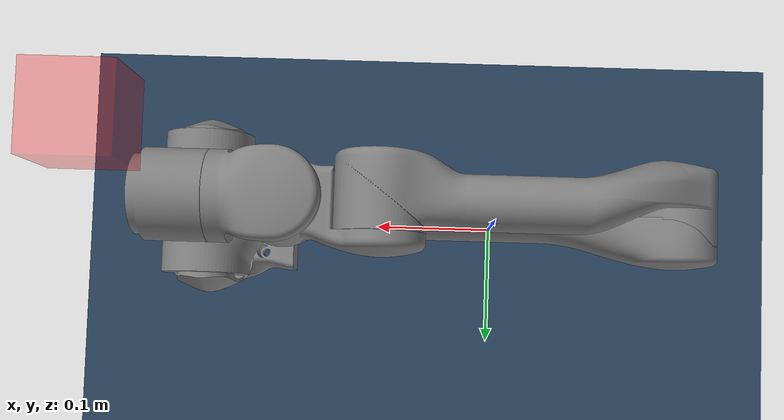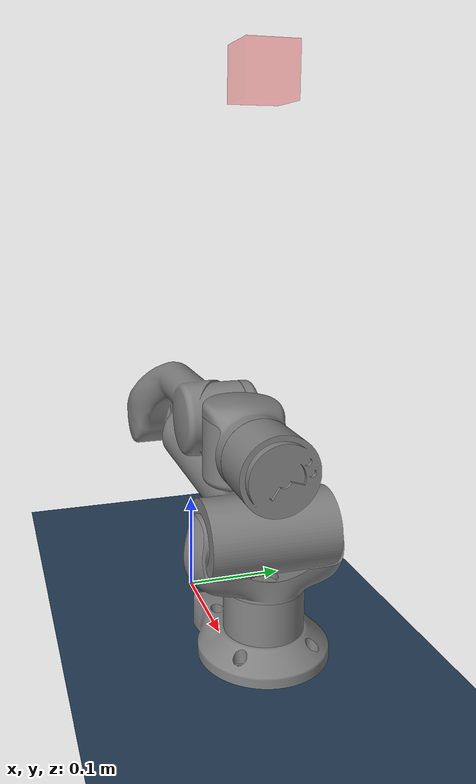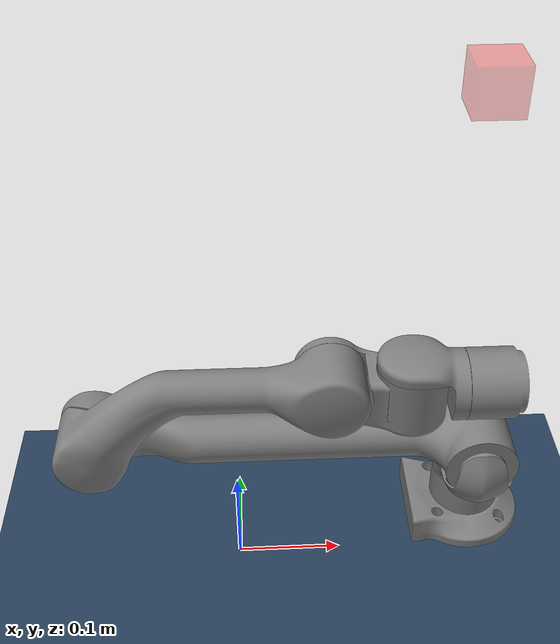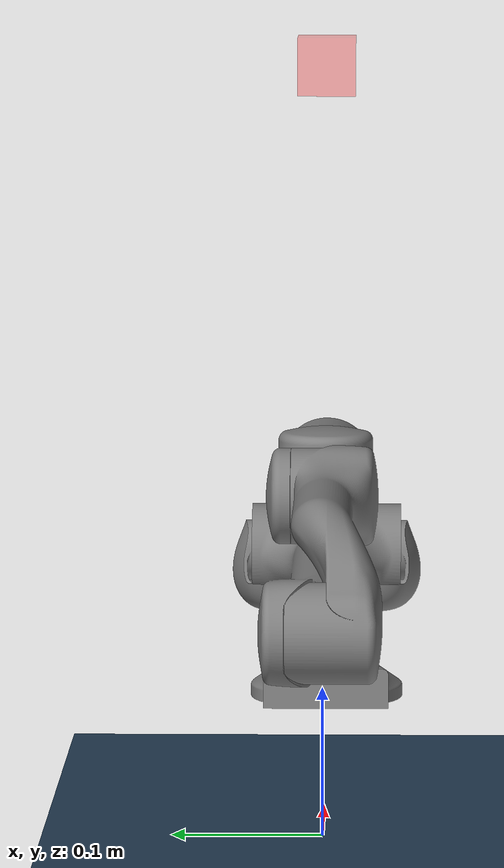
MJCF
<mujoco model="z1 scene">
  <include file="z1_floating.xml"/>

  <statistic center="0 0 0.1" extent="0.6"/>

  <visual>
    <headlight diffuse="0.6 0.6 0.6" ambient="0.3 0.3 0.3" specular="0 0 0"/>
    <rgba haze="0.15 0.25 0.35 1"/>
    <global azimuth="120" elevation="-20"/>
  </visual>

  <asset>
    <texture type="skybox" builtin="gradient" rgb1="0.3 0.5 0.7" rgb2="0 0 0" width="512" height="3072"/>
    <texture type="2d" name="groundplane" builtin="checker" mark="edge" rgb1="0.2 0.3 0.4" rgb2="0.1 0.2 0.3"
      markrgb="0.8 0.8 0.8" width="300" height="300"/>
    <material name="groundplane" texture="groundplane" texuniform="true" texrepeat="5 5" reflectance="0.2"/>
  </asset>

  <worldbody>
    <light pos="0 0 1.5" dir="0 0 -1" directional="true"/>
    <geom name="floor" size="0 0 0.05" type="plane" material="groundplane"/>
    <body name="reference" pos="0.2 0 0.5" quat="1.0 0 0 0" mocap="true">
      <geom name="box" type="box" size="0.02 0.02 0.02" rgba="1.0 0. 0. 0.3" contype="0" conaffinity="0"/>
    </body>
    <body name="limited_reference" pos="0.2 0 0.5" quat="1.0 0 0 0" mocap="true">
      <geom name="box_1" type="box" size="0.02 0.02 0.02" rgba="0.0 1. 0. 0.3" contype="0" conaffinity="0"/>
    </body>
  </worldbody>
</mujoco>

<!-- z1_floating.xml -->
<mujoco model="z1">
  <compiler angle="radian" meshdir="assets"/>

  <default>
    <default class="z1">
      <joint damping="1" frictionloss="1"/>
      <general biastype="affine" gainprm="1000" biasprm="0 -1000 -100" forcerange="-30 30"/>
      <default class="visual">
        <geom type="mesh" group="2" contype="0" conaffinity="0"/>
      </default>
      <default class="collision">
        <geom type="cylinder" group="3" mass="0" density="0"/>
      </default>
    </default>
  </default>

  <asset>
    <mesh file="z1_Link00.stl"/>
    <mesh file="z1_Link01.stl"/>
    <mesh file="z1_Link02.stl"/>
    <mesh file="z1_Link03.stl"/>
    <mesh file="z1_Link04.stl"/>
    <mesh file="z1_Link05.stl"/>
    <mesh file="z1_Link06.stl"/>
  </asset>

  <worldbody>
  <body name="base_link" childclass="z1" >
    <freejoint/>
      <body name="link00" pos="0.22 0 0.055" childclass="z1" >
        <inertial pos="-0.00334984 -0.00013615 0.0249584" quat="-0.00692194 0.682592 0.00133293 0.730766" mass="0.472475"
          diaginertia="0.000531375 0.000415207 0.000378658"/>
        <geom class="visual" mesh="z1_Link00"/>
        <body name="link01" pos="0 0 0.0585">
          <inertial pos="2.47e-06 -0.00025198 0.0231717" quat="0.708578 0.705633 0.000281462 -0.000355927" mass="0.673326"
            diaginertia="0.00128328 0.000839362 0.000719308"/>
          <joint name="joint1" axis="0 0 1" range="-2.61799 2.61799"/>
          <geom class="visual" mesh="z1_Link01" name="link01_collision"/>
          <body name="link02" pos="0 0 0.045">
            <inertial pos="-0.110126 0.00240029 0.00158266" quat="0.00748058 0.707092 -0.0114473 0.70699" mass="1.19132"
              diaginertia="0.0246612 0.0243113 0.00100468"/>
            <joint name="joint2" axis="0 1 0" range="0 2.96706"/>
            <geom class="visual" mesh="z1_Link02" name="link02_collision"/>
            <body name="link03" pos="-0.35 0 0">
              <inertial pos="0.106092 -0.00541815 0.0347638" quat="0.540557 0.443575 0.426319 0.573839" mass="0.839409"
                diaginertia="0.00954365 0.00938711 0.000558432"/>
              <joint name="joint3" axis="0 1 0" range="-2.87979 0"/>
              <geom class="visual" mesh="z1_Link03" name="link03_collision"/>
              <body name="link04" pos="0.218 0 0.057">
                <inertial pos="0.0436668 0.00364738 -0.00170192" quat="0.0390835 0.726445 -0.0526787 0.684087"
                  mass="0.564046" diaginertia="0.000981656 0.00094053 0.000302655"/>
                <joint name="joint4" axis="0 1 0" range="-1.51844 1.51844"/>
                <geom class="visual" mesh="z1_Link04" name="link04_collision"/>
                <body name="link05" pos="0.07 0 0">
                  <inertial pos="0.0312153 0 0.00646316" quat="0.462205 0.535209 0.53785 0.45895" mass="0.389385"
                    diaginertia="0.000558961 0.000547317 0.000167332"/>
                  <joint name="joint5" axis="0 0 1" range="-1.3439 1.3439"/>
                  <geom class="visual" mesh="z1_Link05" name="link05_collision"/>
                  <body name="link06" pos="0.0492 0 0">
                    <inertial pos="0.0241569 -0.00017355 -0.00143876" quat="0.998779 0.0457735 -0.00663717 0.0173548"
                      mass="0.288758" diaginertia="0.00018333 0.000147464 0.000146786"/>
                    <joint name="joint6" axis="1 0 0" range="-2.79253 2.79253"/>
                    <geom class="visual" mesh="z1_Link06" name="link06_collision"/>
                    <geom name="end_effector" size="0.05 0.5 0.5" pos="0.05 0 0"  group="3"/>
                  </body>
                </body>
              </body>
            </body>
          </body>
        </body>
      </body>
    </body>
  </worldbody>

  <actuator>
    <motor class="z1" name="motor1" joint="joint1" ctrlrange="-20.0 20.0"/>
    <motor class="z1" name="motor2" joint="joint2" ctrlrange="-20.0 20.0" />
    <motor class="z1" name="motor3" joint="joint3" ctrlrange="-20.0 20.0"/>
    <motor class="z1" name="motor4" joint="joint4" ctrlrange="-20.0 20.0"/>
    <motor class="z1" name="motor5" joint="joint5" ctrlrange="-20.0 20.0"/>
    <motor class="z1" name="motor6" joint="joint6" ctrlrange="-20.0 20.0"/>
  </actuator>

  <keyframe>
    <key name="home" qpos="0 0.785 -0.261 -0.523 0 0" ctrl="0 0.785 -0.261 -0.523 0 0"/>
  </keyframe>
</mujoco>
